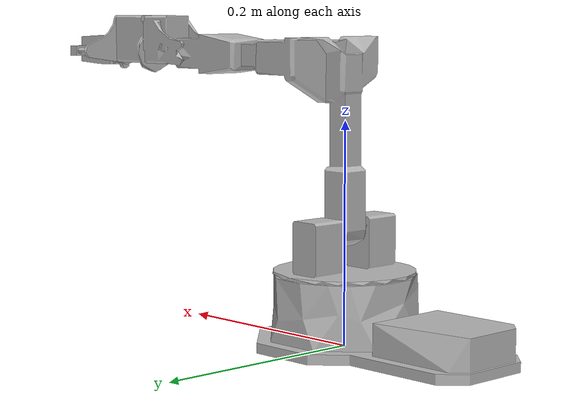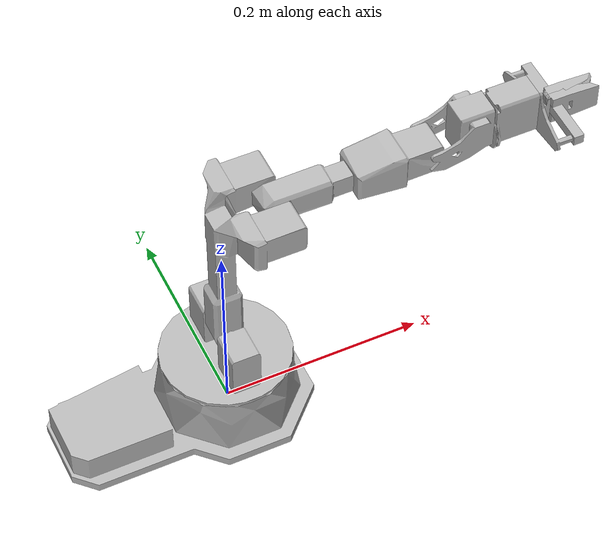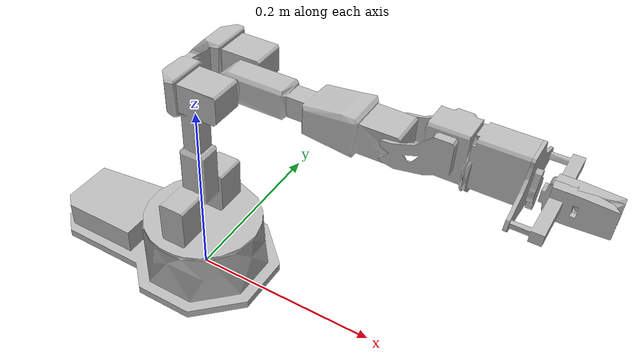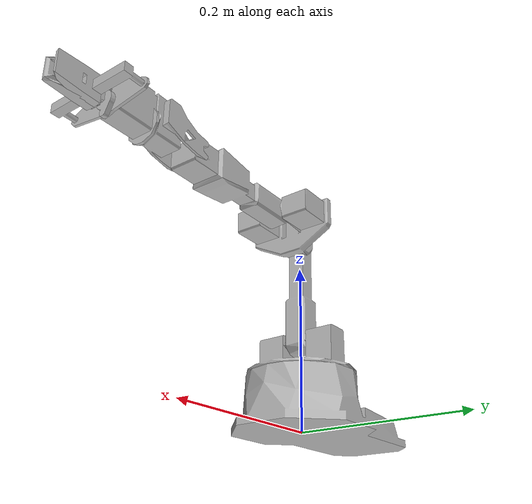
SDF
<sdf version='1.7'>
  <model name='px150'>
    <joint name='fix_to_world' type='fixed'>
      <pose relative_to='__model__'>0 0 0 0 -0 0</pose>
      <parent>world</parent>
      <child>px150/base_link</child>
    </joint>
    <link name='px150/base_link'>
      <pose relative_to='fix_to_world'>0 0 0 0 -0 0</pose>
      <inertial>
        <pose>-0.035456 -0.003357 0.025342 0 -0 1.5708</pose>
        <mass>0.766173</mass>
        <inertia>
          <ixx>0.003355</ixx>
          <ixy>-0.0001248</ixy>
          <ixz>1.104e-05</ixz>
          <iyy>0.001357</iyy>
          <iyz>0.0002101</iyz>
          <izz>0.004112</izz>
        </inertia>
      </inertial>
      <collision name='px150/base_link_collision'>
        <pose>0 0 0 0 0 -1.5708</pose>
        <geometry>
          <mesh>
            <scale>0.001 0.001 0.001</scale>
            <uri>model://meshes/px150_meshes/px150_1_base_coll.stl</uri>
          </mesh>
        </geometry>
      </collision>
      <visual name='px150/base_link_visual'>
        <pose>0 0 0 0 0 -1.5708</pose>
        <geometry>
          <mesh>
            <scale>0.001 0.001 0.001</scale>
            <uri>model://meshes/px150_meshes/px150_1_base_coll.stl</uri>
          </mesh>
        </geometry>
      </visual>
    </link>
    <joint name='waist' type='revolute'>
      <pose relative_to='px150/base_link'>0 0 0.06566 0 -0 0</pose>
      <parent>px150/base_link</parent>
      <child>px150/shoulder_link</child>
      <axis>
        <xyz>0 0 1</xyz>
        <limit>
          <lower>-3.14158</lower>
          <upper>3.14158</upper>
          <effort>8</effort>
          <velocity>3.14159</velocity>
        </limit>
        <dynamics>
          <damping>0</damping>
          <friction>0.1</friction>
          <spring_reference>0</spring_reference>
          <spring_stiffness>0</spring_stiffness>
        </dynamics>
      </axis>
    </joint>
    <link name='px150/shoulder_link'>
      <pose relative_to='waist'>0 0 0 0 -0 0</pose>
      <inertial>
        <pose>-0.0001 2e-05 0.01041 0 -0 1.5708</pose>
        <mass>0.287601</mass>
        <inertia>
          <ixx>0.000239</ixx>
          <ixy>1e-09</ixy>
          <ixz>3.48e-08</ixz>
          <iyy>0.0003634</iyy>
          <iyz>3.613e-07</iyz>
          <izz>0.0004126</izz>
        </inertia>
      </inertial>
      <collision name='px150/shoulder_link_collision'>
        <pose>0 0 0.0015 0 0 -1.5708</pose>
        <geometry>
          <mesh>
            <scale>0.001 0.001 0.001</scale>
            <uri>model://meshes/px150_meshes/px150_2_shoulder_coll.stl</uri>
          </mesh>
        </geometry>
      </collision>
      <visual name='px150/shoulder_link_visual'>
        <pose>0 0 0.0015 0 0 -1.5708</pose>
        <geometry>
          <mesh>
            <scale>0.001 0.001 0.001</scale>
            <uri>model://meshes/px150_meshes/px150_2_shoulder_coll.stl</uri>
          </mesh>
        </geometry>
      </visual>
    </link>
    <joint name='shoulder' type='revolute'>
      <pose relative_to='px150/shoulder_link'>0 0 0.03891 0 -0 0</pose>
      <parent>px150/shoulder_link</parent>
      <child>px150/upper_arm_link</child>
      <axis>
        <xyz>0 1 0</xyz>
        <limit>
          <lower>-1.93732</lower>
          <upper>1.93732</upper>
          <effort>18</effort>
          <velocity>3.14159</velocity>
        </limit>
        <dynamics>
          <damping>0</damping>
          <friction>0.1</friction>
          <spring_reference>0</spring_reference>
          <spring_stiffness>0</spring_stiffness>
        </dynamics>
      </axis>
    </joint>
    <link name='px150/upper_arm_link'>
      <pose relative_to='shoulder'>0 0 0 0 -0 0</pose>
      <inertial>
        <pose>0.01661 0 0.115735 0 -0 1.5708</pose>
        <mass>0.338081</mass>
        <inertia>
          <ixx>0.001021</ixx>
          <ixy>-1e-10</ixy>
          <ixz>0</ixz>
          <iyy>0.001132</iyy>
          <iyz>0.0001839</iyz>
          <izz>0.0003525</izz>
        </inertia>
      </inertial>
      <collision name='px150/upper_arm_link_collision'>
        <pose>0 0 0 0 -0 1.5708</pose>
        <geometry>
          <mesh>
            <scale>0.001 0.001 0.001</scale>
            <uri>model://meshes/px150_meshes/px150_3_upper_arm_coll.stl</uri>
          </mesh>
        </geometry>
      </collision>
      <visual name='px150/upper_arm_link_visual'>
        <pose>0 0 0 0 -0 1.5708</pose>
        <geometry>
          <mesh>
            <scale>0.001 0.001 0.001</scale>
            <uri>model://meshes/px150_meshes/px150_3_upper_arm_coll.stl</uri>
          </mesh>
        </geometry>
      </visual>
    </link>
    <joint name='elbow' type='revolute'>
      <pose relative_to='px150/upper_arm_link'>0.05 0 0.15 0 -0 0</pose>
      <parent>px150/upper_arm_link</parent>
      <child>px150/forearm_link</child>
      <axis>
        <xyz>0 1 0</xyz>
        <limit>
          <lower>-2.0944</lower>
          <upper>1.65806</upper>
          <effort>13</effort>
          <velocity>3.14159</velocity>
        </limit>
        <dynamics>
          <damping>0</damping>
          <friction>0.1</friction>
          <spring_reference>0</spring_reference>
          <spring_stiffness>0</spring_stiffness>
        </dynamics>
      </axis>
    </joint>
    <link name='px150/forearm_link'>
      <pose relative_to='elbow'>0 0 0 0 -0 0</pose>
      <inertial>
        <pose>0.084847 -0.000107 0 0 -0 1.5708</pose>
        <mass>0.226542</mass>
        <inertia>
          <ixx>0.0005125</ixx>
          <ixy>-1.3403e-06</ixy>
          <ixz>0</ixz>
          <iyy>4.988e-05</iyy>
          <iyz>0</iyz>
          <izz>0.0005207</izz>
        </inertia>
      </inertial>
      <collision name='px150/forearm_link_collision'>
        <pose>0 0 0 0 -0 1.5708</pose>
        <geometry>
          <mesh>
            <scale>0.001 0.001 0.001</scale>
            <uri>model://meshes/px150_meshes/px150_4_forearm_coll.stl</uri>
          </mesh>
        </geometry>
      </collision>
      <visual name='px150/forearm_link_visual'>
        <pose>0 0 0 0 -0 1.5708</pose>
        <geometry>
          <mesh>
            <scale>0.001 0.001 0.001</scale>
            <uri>model://meshes/px150_meshes/px150_4_forearm_coll.stl</uri>
          </mesh>
        </geometry>
      </visual>
    </link>
    <joint name='wrist_angle' type='revolute'>
      <pose relative_to='px150/forearm_link'>0.15 0 0 0 -0 0</pose>
      <parent>px150/forearm_link</parent>
      <child>px150/wrist_link</child>
      <axis>
        <xyz>0 1 0</xyz>
        <limit>
          <lower>-1.74533</lower>
          <upper>2.14675</upper>
          <effort>5</effort>
          <velocity>3.14159</velocity>
        </limit>
        <dynamics>
          <damping>0</damping>
          <friction>0.1</friction>
          <spring_reference>0</spring_reference>
          <spring_stiffness>0</spring_stiffness>
        </dynamics>
      </axis>
    </joint>
    <link name='px150/wrist_link'>
      <pose relative_to='wrist_angle'>0 0 0 0 -0 0</pose>
      <inertial>
        <pose>0.04236 -1e-05 0.010577 0 -0 1.5708</pose>
        <mass>0.084957</mass>
        <inertia>
          <ixx>3.082e-05</ixx>
          <ixy>1.91e-08</ixy>
          <ixz>2.3e-09</ixz>
          <iyy>2.822e-05</iyy>
          <iyz>2.5481e-06</iyz>
          <izz>3.152e-05</izz>
        </inertia>
      </inertial>
      <collision name='px150/wrist_link_collision'>
        <pose>0 0 0 0 -0 1.5708</pose>
        <geometry>
          <mesh>
            <scale>0.001 0.001 0.001</scale>
            <uri>model://meshes/px150_meshes/px150_5_wrist_coll.stl</uri>
          </mesh>
        </geometry>
      </collision>
      <visual name='px150/wrist_link_visual'>
        <pose>0 0 0 0 -0 1.5708</pose>
        <geometry>
          <mesh>
            <scale>0.001 0.001 0.001</scale>
            <uri>model://meshes/px150_meshes/px150_5_wrist_coll.stl</uri>
          </mesh>
        </geometry>
      </visual>
    </link>
    <joint name='wrist_rotate' type='revolute'>
      <pose relative_to='px150/wrist_link'>0.065 0 0 0 -0 0</pose>
      <parent>px150/wrist_link</parent>
      <child>px150/gripper_link</child>
      <axis>
        <xyz>1 0 0</xyz>
        <limit>
          <lower>-3.14158</lower>
          <upper>3.14158</upper>
          <effort>1</effort>
          <velocity>3.14159</velocity>
        </limit>
        <dynamics>
          <damping>0</damping>
          <friction>0.1</friction>
          <spring_reference>0</spring_reference>
          <spring_stiffness>0</spring_stiffness>
        </dynamics>
      </axis>
    </joint>
    <link name='px150/gripper_link'>
      <pose relative_to='wrist_rotate'>0 0 0 0 -0 0</pose>
      <inertial>
        <pose>0.032529 0 0.009096 0 -0 1.5708</pose>
        <mass>0.110084</mass>
        <inertia>
          <ixx>0.000361516</ixx>
          <ixy>-4.09809e-10</ixy>
          <ixz>-5.19982e-10</ixz>
          <iyy>0.000348013</iyy>
          <iyz>-6.59796e-06</iyz>
          <izz>0.000372851</izz>
        </inertia>
      </inertial>
      <collision name='px150/gripper_link_collision'>
        <pose>-0.02 0 0 0 -0 1.5708</pose>
        <geometry>
          <mesh>
            <scale>0.001 0.001 0.001</scale>
            <uri>model://meshes/px150_meshes/px150_6_gripper_coll.stl</uri>
          </mesh>
        </geometry>
      </collision>
      <collision name='px150/gripper_link_fixed_joint_lump__px150/gripper_bar_link_collision_1'>
        <pose>-0.02 0 0 0 -0 1.5708</pose>
        <geometry>
          <mesh>
            <scale>0.001 0.001 0.001</scale>
            <uri>model://meshes/px150_meshes/px150_8_gripper_bar_coll.stl</uri>
          </mesh>
        </geometry>
      </collision>
      <visual name='px150/gripper_link_visual'>
        <pose>-0.02 0 0 0 -0 1.5708</pose>
        <geometry>
          <mesh>
            <scale>0.001 0.001 0.001</scale>
            <uri>model://meshes/px150_meshes/px150_6_gripper_coll.stl</uri>
          </mesh>
        </geometry>
      </visual>
      <visual name='px150/gripper_link_fixed_joint_lump__px150/gripper_bar_link_visual_1'>
        <pose>-0.02 0 0 0 -0 1.5708</pose>
        <geometry>
          <mesh>
            <scale>0.001 0.001 0.001</scale>
            <uri>model://meshes/px150_meshes/px150_8_gripper_bar_coll.stl</uri>
          </mesh>
        </geometry>
      </visual>
    </link>
    <joint name='gripper' type='revolute'>
      <pose relative_to='px150/gripper_link'>0.0485 0 0 0 -0 0</pose>
      <parent>px150/gripper_link</parent>
      <child>px150/gripper_prop_link</child>
      <axis>
        <xyz>1 0 0</xyz>
        <limit>
          <lower>-1e+16</lower>
          <upper>1e+16</upper>
        </limit>
        <dynamics>
          <damping>0</damping>
          <friction>0.1</friction>
          <spring_reference>0</spring_reference>
          <spring_stiffness>0</spring_stiffness>
        </dynamics>
      </axis>
    </joint>
    <link name='px150/gripper_prop_link'>
      <pose relative_to='gripper'>0 0 0 0 -0 0</pose>
      <inertial>
        <pose>0.000846 -2e-06 4.2e-05 0 -0 1.5708</pose>
        <mass>0.00434</mass>
        <inertia>
          <ixx>5.923e-07</ixx>
          <ixy>0</ixy>
          <ixz>3.195e-07</ixz>
          <iyy>1.1156e-06</iyy>
          <iyz>-4e-10</iyz>
          <izz>5.743e-07</izz>
        </inertia>
      </inertial>
      <collision name='px150/gripper_prop_link_collision'>
        <pose>-0.0685 0 0 0 -0 1.5708</pose>
        <geometry>
          <mesh>
            <scale>0.001 0.001 0.001</scale>
            <uri>model://meshes/px150_meshes/px150_7_gripper_prop_coll.stl</uri>
          </mesh>
        </geometry>
      </collision>
      <visual name='px150/gripper_prop_link_visual'>
        <pose>-0.0685 0 0 0 -0 1.5708</pose>
        <geometry>
          <mesh>
            <scale>0.001 0.001 0.001</scale>
            <uri>model://meshes/px150_meshes/px150_7_gripper_prop_coll.stl</uri>
          </mesh>
        </geometry>
      </visual>
    </link>
    <joint name='left_finger' type='prismatic'>
      <pose relative_to='px150/gripper_link'>0.066 0 0 0 -0 0</pose>
      <parent>px150/gripper_link</parent>
      <child>px150/left_finger_link</child>
      <axis>
        <xyz>0 1 0</xyz>
        <limit>
          <lower>0.015</lower>
          <upper>0.037</upper>
          <effort>5</effort>
          <velocity>1</velocity>
        </limit>
        <dynamics>
          <damping>0</damping>
          <friction>0.1</friction>
          <spring_reference>0</spring_reference>
          <spring_stiffness>0</spring_stiffness>
        </dynamics>
      </axis>
    </joint>
    <link name='px150/left_finger_link'>
      <pose relative_to='left_finger'>0 0 0 0 -0 0</pose>
      <inertial>
        <pose>0.013816 0 0 -0 0 -1.5708</pose>
        <mass>0.016246</mass>
        <inertia>
          <ixx>4.731e-06</ixx>
          <ixy>-4.56e-07</ixy>
          <ixz>0</ixz>
          <iyy>1.5506e-06</iyy>
          <iyz>0</iyz>
          <izz>3.7467e-06</izz>
        </inertia>
      </inertial>
      <collision name='px150/left_finger_link_collision'>
        <pose>0 0.005 0 -0 0 3.14159</pose>
        <geometry>
          <mesh>
            <scale>0.001 0.001 0.001</scale>
            <uri>model://meshes/px150_meshes/px150_9_gripper_finger_coll.stl</uri>
          </mesh>
        </geometry>
      </collision>
      <visual name='px150/left_finger_link_visual'>
        <pose>0 0.005 0 -0 0 3.14159</pose>
        <geometry>
          <mesh>
            <scale>0.001 0.001 0.001</scale>
            <uri>model://meshes/px150_meshes/px150_9_gripper_finger_coll.stl</uri>
          </mesh>
        </geometry>
      </visual>
    </link>
    <joint name='right_finger' type='prismatic'>
      <pose relative_to='px150/gripper_link'>0.066 0 0 0 -0 0</pose>
      <parent>px150/gripper_link</parent>
      <child>px150/right_finger_link</child>
      <axis>
        <xyz>0 1 0</xyz>
        <limit>
          <lower>-0.037</lower>
          <upper>-0.015</upper>
          <effort>5</effort>
          <velocity>1</velocity>
        </limit>
        <dynamics>
          <damping>0</damping>
          <friction>0.1</friction>
          <spring_reference>0</spring_reference>
          <spring_stiffness>0</spring_stiffness>
        </dynamics>
      </axis>
    </joint>
    <link name='px150/right_finger_link'>
      <pose relative_to='right_finger'>0 0 0 0 -0 0</pose>
      <inertial>
        <pose>0.013816 0 0 3.14159 0 -1.5708</pose>
        <mass>0.016246</mass>
        <inertia>
          <ixx>4.731e-06</ixx>
          <ixy>4.56e-07</ixy>
          <ixz>0</ixz>
          <iyy>1.5506e-06</iyy>
          <iyz>0</iyz>
          <izz>3.7467e-06</izz>
        </inertia>
      </inertial>
      <collision name='px150/right_finger_link_collision'>
        <pose>0 -0.005 0 3.14159 0 3.14159</pose>
        <geometry>
          <mesh>
            <scale>0.001 0.001 0.001</scale>
            <uri>model://meshes/px150_meshes/px150_9_gripper_finger_coll.stl</uri>
          </mesh>
        </geometry>
      </collision>
      <visual name='px150/right_finger_link_visual'>
        <pose>0 -0.005 0 3.14159 0 3.14159</pose>
        <geometry>
          <mesh>
            <scale>0.001 0.001 0.001</scale>
            <uri>model://meshes/px150_meshes/px150_9_gripper_finger_coll.stl</uri>
          </mesh>
        </geometry>
      </visual>
    </link>
    <static>0</static>
    <plugin name='gazebo_arm_model_plugin' filename='install/link-intersection-brute-force/lib/link-intersection-brute-force/libgazebo_arm_model_plugin.so'/>
  </model>
</sdf>
